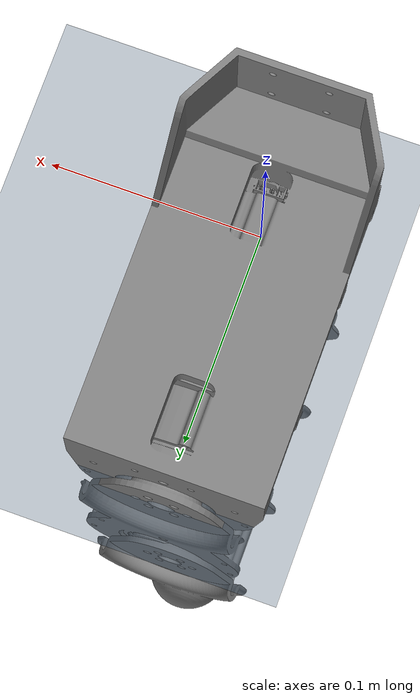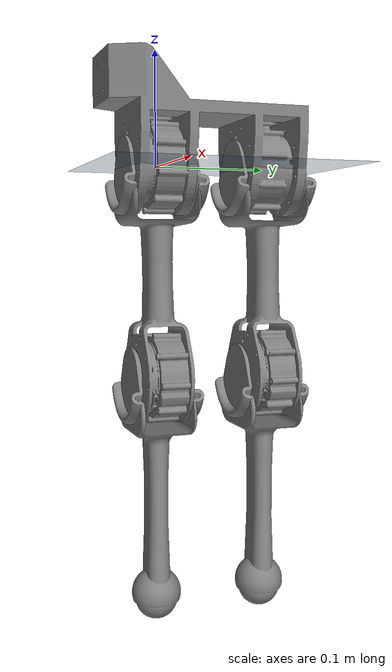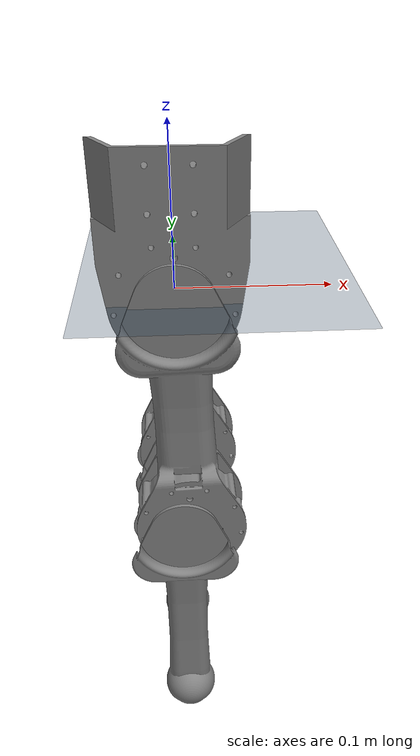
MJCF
<mujoco model="biped">
  <include file="two_legged.xml"/>

  <statistic center="0 0 0.55" extent="1.1"/>

  <visual>
    <headlight diffuse="0.6 0.6 0.6" ambient="0.3 0.3 0.3" specular="0 0 0"/>
    <rgba haze="0.15 0.25 0.35 1"/>
    <global azimuth="75" elevation="-20"/>
  </visual>

  <asset>
    <texture type="skybox" builtin="gradient" rgb1="0.3 0.5 0.7" rgb2="0 0 0" width="512" height="3072"/>
    <texture type="2d" name="groundplane" builtin="checker" mark="edge" rgb1="0.2 0.3 0.4" rgb2="0.1 0.2 0.3"
      markrgb="0.8 0.8 0.8" width="300" height="300"/>
    <material name="groundplane" texture="groundplane" texuniform="true" texrepeat="5 5" reflectance="0.2"/>
  </asset>

  <worldbody>
    <light pos="0 0 3" dir="0 0 -1" directional="false"/>
    <geom name="floor" size="0 0 .125" type="plane" material="groundplane" conaffinity="15" condim="3"/>
  </worldbody>
</mujoco>

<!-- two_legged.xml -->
<mujoco model="biped">
    <compiler angle="degree"/>  <!-- use radians to define angles -->
    <option>
        <flag contact="enable"/>
    </option>
    <default>
        <mesh scale="1 1 1"/>
        <geom type="mesh" />
        <joint type="hinge" limited="true" axis="0 1 0"/>
        <position ctrllimited="true" kp="1" kv="0.1"/>
    </default>
    <asset>
        <!-- Fusion outputs meshes with mm units by default, but must be converted to m in MuJoCo, hence the scaling -->
        <mesh name="Hip" file="double_hip_updated.stl"/>
        <mesh name="Thigh" file="double_thigh_updated.stl"/>
        <mesh name="Shank" file="double_shank_updated.stl"/>
    </asset>
    <worldbody>
        <body name="Hip">
            <geom mesh="Hip"/>
            <joint name="base_z" type="slide" axis="0 0 1" pos="0 0 0" limited="false"/>

            <!-- First leg (right) -->
            <body name="Thigh_r" pos="0 0 0" >
                <joint name="hip_joint_r" pos="0 0 0" axis="0 1 0" limited="true" range="-90 90"/>
                <geom mesh="Thigh"/>
                <body name="Shank_r" pos="0 0 -0.183">
                    <joint name="knee_joint_r" axis="0 1 0" limited="true" range="-90 90"/>
                    <geom mesh="Shank"/>
                </body>
            </body>

            <!-- Second leg (left) -->
            <body name="Thigh_l" pos="0 0.1 0" >
                <joint name="hip_joint_l" pos="0 0 0" axis="0 1 0" limited="true" range="-90 90"/>
                <geom mesh="Thigh"/>
                <body name="Shank_l" pos="0 0 -0.183">
                    <joint name="knee_joint_l" axis="0 1 0" limited="true" range="-90 90"/>
                    <geom mesh="Shank"/>
                </body>
            </body>
        </body>
    </worldbody>

    <actuator>
        <!-- Actuators for the right leg -->
        <position name="hip_joint_right_act" joint="hip_joint_r" ctrlrange="-5 5"/>
        <position name="knee_joint_right_act" joint="knee_joint_r" ctrlrange="-5 5"/>

        <!-- Actuators for the left leg -->
        <position name="hip_joint_left_act" joint="hip_joint_l" ctrlrange="-5 5"/>
        <position name="knee_joint_left_act" joint="knee_joint_l" ctrlrange="-5 5"/>
    </actuator>
    <contact>
        <exclude body1="Hip" body2="Thigh_r"/>
        <exclude body1="Hip" body2="Thigh_l"/>
        <exclude body1="Thigh_r" body2="Shank_r"/>
        <exclude body1="Thigh_l" body2="Shank_l"/>
    </contact>
</mujoco>
